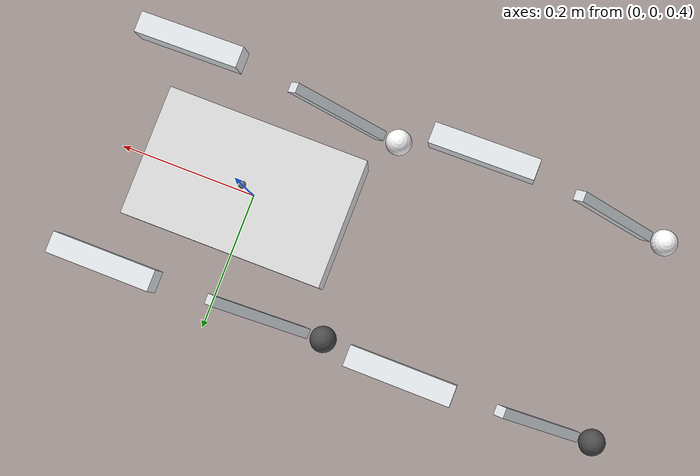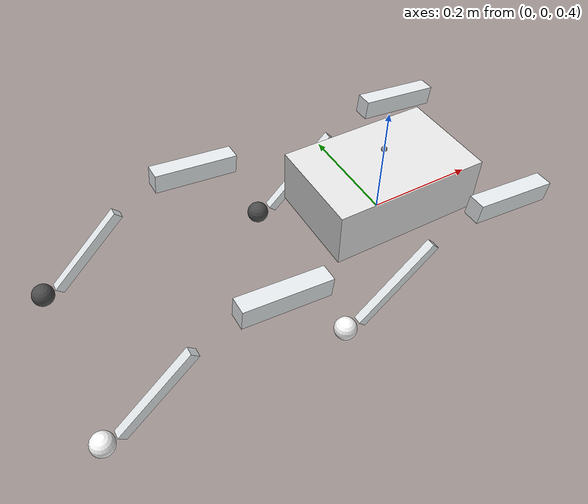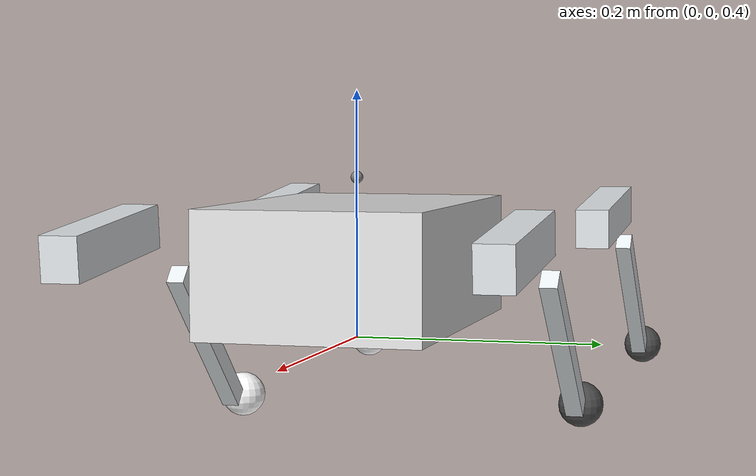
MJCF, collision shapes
<mujoco model="d1">
  <compiler angle="radian" meshdir="../meshes/"/>
  <option timestep="0.005" cone="elliptic" impratio="100" />
  <asset>
    <mesh name="base" file="base.STL"/>
    <mesh name="LF_hip" file="LF_hip.STL"/>
    <mesh name="FL_thigh" file="FL_thigh.STL"/>
    <mesh name="FL_calf" file="FL_calf.STL"/>
    <mesh name="FL_foot" file="FL_foot.STL"/>
    <mesh name="RF_hip" file="RF_hip.STL"/>
    <mesh name="FR_thigh" file="FR_thigh.STL"/>
    <mesh name="FR_calf" file="FR_calf.STL"/>
    <mesh name="FR_foot" file="FR_foot.STL"/>
    <mesh name="LH_hip" file="LH_hip.STL"/>
    <mesh name="RL_thigh" file="RL_thigh.STL"/>
    <mesh name="RL_calf" file="RL_calf.STL"/>
    <mesh name="RL_foot" file="RL_foot.STL"/>
    <mesh name="RH_hip" file="RH_hip.STL"/>
    <mesh name="RR_thigh" file="RR_thigh.STL"/>
    <mesh name="RR_calf" file="RR_calf.STL"/>
    <mesh name="RR_foot" file="RR_foot.STL"/>
  </asset>

  <worldbody>
    <body name="base" pos="0.0 0.0 0.53" quat="1.0 0.0 0.0 0.0">
      <inertial pos="-0.001955 0.002743 -0.068608" quat="0.00498611 0.706314 0.00376067 0.707871" mass="6.8891" diaginertia="0.10308 0.0811058 0.0359755"/>
      <joint name="floating_base" type="free" limited="false" actuatorfrclimited="false"/>
      <geom type="mesh" contype="0" conaffinity="0" group="1" density="0" rgba="0.882353 0.882353 0.882353 1" mesh="base"/>
      <geom size="0.14 0.09 0.05" pos="0 0 -0.069779" type="box" rgba="0.882353 0.882353 0.882353 1"/>
       <site name="imu" pos="0.0 0.0 0.0" />

      <body name="FL_hip" pos="0.16175 0.059997 -0.061498">
        <inertial pos="0.04756 -0.010434 -4.6e-05" quat="0.533889 0.530396 0.469192 0.462062" mass="0.706316" diaginertia="0.000537421 0.00044599 0.000400589"/>
        <joint name="FL_hip_joint" pos="0 0 0" axis="1 0 0" range="-1.57 1.57" actuatorfrcrange="-50 50" damping="0.01" armature="0.01" frictionloss="0.2"/>
        <geom type="mesh" contype="0" conaffinity="0" group="1" density="0" rgba="0.439216 0.439216 0.439216 1" mesh="LF_hip"/>
        <geom size="5e-05 5e-05 5e-05" type="box" rgba="0.439216 0.439216 0.439216 1"/>

        <body name="FL_thigh" pos="0.049998 0.019503 0">
          <inertial pos="-0.023554 0.050542 0.001956" quat="-0.0691461 0.692085 -0.223407 0.682881" mass="0.977146" diaginertia="0.00393691 0.00388566 0.000738421"/>
          <joint name="FL_thigh_joint" pos="0 0 0" axis="0 1 0" range="-1.57 2.4" actuatorfrcrange="-50 50" damping="0.01" armature="0.01" frictionloss="0.2"/>
          <geom type="mesh" contype="0" conaffinity="0" group="1" density="0" rgba="0.898039 0.917647 0.929412 1" mesh="FL_thigh"/>
          <geom size="0.075 0.015 0.0175" pos="-0.07 0.08 0.016" quat="0.99875 0 0.0499792 0" type="box" rgba="0.898039 0.917647 0.929412 1"/>

          <body name="FL_calf" pos="-0.2 0.07825 0">
            <inertial pos="-0.0285562 0.000197846 -0.0641588" quat="0.594858 0.384098 0.388599 0.589578" mass="0.270521" diaginertia="0.00625399 0.00602428 0.000252664"/>
            <joint name="FL_calf_joint" pos="0 0 0" axis="0 1 0" range="-2.25 0.5" actuatorfrcrange="-50 50" damping="0.01" armature="0.01" frictionloss="0.2"/>
            <geom type="mesh" contype="0" conaffinity="0" group="1" density="0" rgba="0.898039 0.917647 0.929412 1" mesh="FL_calf"/>
            <geom size="0.09 0.0075 0.009" pos="-0.08 0 -0.08" quat="0.928665 0 -0.37092 0" type="box" rgba="0.898039 0.917647 0.929412 1"/>
            <geom pos="-0.17362 0 -0.14312" type="mesh" contype="0" conaffinity="0" group="1" density="0" rgba="0.298039 0.298039 0.298039 1" mesh="FL_foot"/>
            <geom name="FL_foot_collision" size="0.02" pos="-0.17362 0 -0.14312" rgba="0.298039 0.298039 0.298039 1"/>
          </body>
        </body>
      </body>

      <body name="FR_hip" pos="0.16175 -0.059983 -0.061498">
        <inertial pos="0.047555 0.010661 -4.6e-05" quat="0.462045 0.469209 0.530352 0.533933" mass="0.706316" diaginertia="0.000537421 0.00044699 0.000400589"/>
        <joint name="FR_hip_joint" pos="0 0 0" axis="1 0 0" range="-1.57 1.57" actuatorfrcrange="-50 50" damping="0.01" armature="0.01" frictionloss="0.2"/>
        <geom type="mesh" contype="0" conaffinity="0" group="1" density="0" rgba="0.439216 0.439216 0.439216 1" mesh="RF_hip"/>
        <geom size="5e-05 5e-05 5e-05" type="box" rgba="0.439216 0.439216 0.439216 1"/>

        <body name="FR_thigh" pos="0.050002 -0.019247 0">
          <inertial pos="-0.023592 -0.050542 0.001598" quat="0.0702149 0.68698 0.222233 0.688288" mass="0.977146" diaginertia="0.00393714 0.00388579 0.000738077"/>
          <joint name="FR_thigh_joint" pos="0 0 0" axis="0 1 0" range="-1.57 2.4" actuatorfrcrange="-50 50" damping="0.01" armature="0.01" frictionloss="0.2"/>
          <geom type="mesh" contype="0" conaffinity="0" group="1" density="0" rgba="0.898039 0.917647 0.929412 1" mesh="FR_thigh"/>
          <geom size="0.075 0.015 0.0175" pos="-0.07 -0.08 0.016" quat="0.99875 0 0.0499792 0" type="box" rgba="0.898039 0.917647 0.929412 1"/>

          <body name="FR_calf" pos="-0.19998 -0.07825 -0.003052">
            <inertial pos="-0.0285651 -0.000197846 -0.0635362" quat="0.590656 0.386862 0.382293 0.596083" mass="0.270521" diaginertia="0.00627627 0.00605544 0.000243781"/>
            <joint name="FR_calf_joint" pos="0 0 0" axis="0 1 0" range="-2.25 0.5" actuatorfrcrange="-50 50" damping="0.01" armature="0.01" frictionloss="0.2"/>
            <geom type="mesh" contype="0" conaffinity="0" group="1" density="0" rgba="0.898039 0.917647 0.929412 1" mesh="FR_calf"/>
            <geom size="0.09 0.0075 0.009" pos="-0.08 0 -0.08" quat="0.928665 0 -0.37092 0" type="box" rgba="0.898039 0.917647 0.929412 1"/>
            <geom pos="-0.17362 0 -0.14312" type="mesh" contype="0" conaffinity="0" group="1" density="0" rgba="1 1 1 1" mesh="FR_foot"/>
            <geom name="FR_foot_collision" size="0.02" pos="-0.17362 0 -0.14312" rgba="1 1 1 1"/>
          </body>
        </body>
      </body>

      <body name="RL_hip" pos="-0.16175 0.059997 -0.061502">
        <inertial pos="-0.047555 -0.010434 -4.2e-05" quat="0.469192 0.462062 0.533889 0.530396" mass="0.706316" diaginertia="0.000537421 0.00044599 0.000400589"/>
        <joint name="RL_hip_joint" pos="0 0 0" axis="1 0 0" range="-1.57 1.57" actuatorfrcrange="-50 50" damping="0.01" armature="0.01" frictionloss="0.2"/>
        <geom type="mesh" contype="0" conaffinity="0" group="1" density="0" rgba="1 1 1 1" mesh="LH_hip"/>
        <geom size="5e-05 5e-05 5e-05" type="box" rgba="1 1 1 1"/>

        <body name="RL_thigh" pos="-0.050002 0.019503 0">
          <inertial pos="-0.023554 0.050542 0.001956" quat="-0.0691461 0.692085 -0.223407 0.682881" mass="0.977146" diaginertia="0.00393691 0.00388566 0.000738421"/>
          <joint name="RL_thigh_joint" pos="0 0 0" axis="0 1 0" range="-1.57 2.4" actuatorfrcrange="-50 50" damping="0.01" armature="0.01" frictionloss="0.2"/>
          <geom type="mesh" contype="0" conaffinity="0" group="1" density="0" rgba="0.898039 0.917647 0.929412 1" mesh="RL_thigh"/>
          <geom size="0.075 0.015 0.0175" pos="-0.07 0.08 0.016" quat="0.99875 0 0.0499792 0" type="box" rgba="0.898039 0.917647 0.929412 1"/>

         <body name="RL_calf" pos="-0.2 0.07825 0">
            <inertial pos="-0.0285562 0.000197846 -0.0641588" quat="0.594858 0.384098 0.388599 0.589578" mass="0.270521" diaginertia="0.00625399 0.00602428 0.000252664"/>
            <joint name="RL_calf_joint" pos="0 0 0" axis="0 1 0" range="-2.25 0.5" actuatorfrcrange="-50 50" damping="0.01" armature="0.01" frictionloss="0.2"/>
            <geom type="mesh" contype="0" conaffinity="0" group="1" density="0" rgba="0.898039 0.917647 0.929412 1" mesh="RL_calf"/>
            <geom size="0.09 0.0075 0.009" pos="-0.08 0 -0.08" quat="0.928665 0 -0.37092 0" type="box" rgba="0.898039 0.917647 0.929412 1"/>
            <geom pos="-0.17362 0 -0.14312" type="mesh" contype="0" conaffinity="0" group="1" density="0" rgba="0.298039 0.298039 0.298039 1" mesh="RL_foot"/>
            <geom name="RL_foot_collision" size="0.02" pos="-0.17362 0 -0.14312" rgba="0.298039 0.298039 0.298039 1"/>
          </body>
        </body>
      </body>

      <body name="RR_hip" pos="-0.16175 -0.060003 -0.061502">
        <inertial pos="-0.047555 0.010661 4.6e-05" quat="0.533933 0.530352 0.469209 0.462045" mass="0.706316" diaginertia="0.000537421 0.00044699 0.000400589"/>
        <joint name="RR_hip_joint" pos="0 0 0" axis="1 0 0" range="-1.57 1.57" actuatorfrcrange="-50 50" damping="0.01" armature="0.01" frictionloss="0.2"/>
        <geom type="mesh" contype="0" conaffinity="0" group="1" density="0" rgba="0.439216 0.439216 0.439216 1" mesh="RH_hip"/>
        <geom size="5e-05 5e-05 5e-05" type="box" rgba="0.439216 0.439216 0.439216 1"/>

        <body name="RR_thigh" pos="-0.050002 -0.019247 0">
          <inertial pos="-0.023592 -0.050542 0.001598" quat="0.0702149 0.68698 0.222233 0.688288" mass="0.977146" diaginertia="0.00393714 0.00388579 0.000738077"/>
          <joint name="RR_thigh_joint" pos="0 0 0" axis="0 1 0" range="-1.57 2.4" actuatorfrcrange="-50 50" damping="0.01" armature="0.01" frictionloss="0.2"/>
          <geom type="mesh" contype="0" conaffinity="0" group="1" density="0" rgba="0.898039 0.917647 0.929412 1" mesh="RR_thigh"/>
          <geom size="0.075 0.015 0.0175" pos="-0.07 -0.08 0.016" quat="0.99875 0 0.0499792 0" type="box" rgba="0.898039 0.917647 0.929412 1"/>

          <body name="RR_calf" pos="-0.19998 -0.07825 -0.003052">
            <inertial pos="-0.0285646 -0.000197846 -0.063536" quat="0.590656 0.386862 0.382294 0.596083" mass="0.270521" diaginertia="0.00627622 0.00605539 0.000243781"/>
            <joint name="RR_calf_joint" pos="0 0 0" axis="0 1 0" range="-2.25 0.5" actuatorfrcrange="-50 50" damping="0.01" armature="0.01" frictionloss="0.2"/>
            <geom type="mesh" contype="0" conaffinity="0" group="1" density="0" rgba="0.898039 0.917647 0.929412 1" mesh="RR_calf"/>
            <geom size="0.09 0.0075 0.009" pos="-0.08 0 -0.08" quat="0.928665 0 -0.37092 0" type="box" rgba="0.898039 0.917647 0.929412 1"/>
            <geom pos="-0.173616 0 -0.143118" type="mesh" contype="0" conaffinity="0" group="1" density="0" rgba="1 1 1 1" mesh="RR_foot"/>
            <geom name="RR_foot_collision" size="0.02" pos="-0.173616 0 -0.143118" rgba="1 1 1 1"/>
          </body>
        </body>
      </body>
    </body>
  </worldbody>

   <actuator>
    <motor name="FL_hip" joint="FL_hip_joint" ctrlrange="-50.0 50.0" />
    <motor name="FL_thigh" joint="FL_thigh_joint" ctrlrange="-50.0 50.0" />
    <motor name="FL_calf" joint="FL_calf_joint" ctrlrange="-50.0 50.0" />

    <motor name="FR_hip" joint="FR_hip_joint" ctrlrange="-50.0 50.0" />
    <motor name="FR_thigh" joint="FR_thigh_joint" ctrlrange="-50.0 50.0" />
    <motor name="FR_calf" joint="FR_calf_joint" ctrlrange="-50.0 50.0" />

    <motor name="RL_hip" joint="RL_hip_joint" ctrlrange="-50.0 50.0" />
    <motor name="RL_thigh" joint="RL_thigh_joint" ctrlrange="-50.0 50.0" />
    <motor name="RL_calf" joint="RL_calf_joint" ctrlrange="-50.0 50.0" />

    <motor name="RR_hip" joint="RR_hip_joint" ctrlrange="-50.0 50.0" />
    <motor name="RR_thigh" joint="RR_thigh_joint" ctrlrange="-50.0 50.0" />
    <motor name="RR_calf" joint="RR_calf_joint" ctrlrange="-50.0 50.0" />
  </actuator>

  <sensor>
    <jointpos name="FL_hip_pos" joint="FL_hip_joint" />
    <jointpos name="FL_thigh_pos" joint="FL_thigh_joint" />
    <jointpos name="FL_calf_pos" joint="FL_calf_joint" />

    <jointpos name="FR_hip_pos" joint="FR_hip_joint" />
    <jointpos name="FR_thigh_pos" joint="FR_thigh_joint" />
    <jointpos name="FR_calf_pos" joint="FR_calf_joint" />

    <jointpos name="RL_hip_pos" joint="RL_hip_joint" />
    <jointpos name="RL_thigh_pos" joint="RL_thigh_joint" />
    <jointpos name="RL_calf_pos" joint="RL_calf_joint" />

    <jointpos name="RR_hip_pos" joint="RR_hip_joint" />
    <jointpos name="RR_thigh_pos" joint="RR_thigh_joint" />
    <jointpos name="RR_calf_pos" joint="RR_calf_joint" />

    <jointvel name="FL_hip_vel" joint="FL_hip_joint" />
    <jointvel name="FL_thigh_vel" joint="FL_thigh_joint" />
    <jointvel name="FL_calf_vel" joint="FL_calf_joint" />

    <jointvel name="FR_hip_vel" joint="FR_hip_joint" />
    <jointvel name="FR_thigh_vel" joint="FR_thigh_joint" />
    <jointvel name="FR_calf_vel" joint="FR_calf_joint" />

    <jointvel name="RL_hip_vel" joint="RL_hip_joint" />
    <jointvel name="RL_thigh_vel" joint="RL_thigh_joint" />
    <jointvel name="RL_calf_vel" joint="RL_calf_joint" />

    <jointvel name="RR_hip_vel" joint="RR_hip_joint" />
    <jointvel name="RR_thigh_vel" joint="RR_thigh_joint" />
    <jointvel name="RR_calf_vel" joint="RR_calf_joint" />

    <jointactuatorfrc name="FL_hip_torque" joint="FL_hip_joint" noise="0.01" />
    <jointactuatorfrc name="FL_thigh_torque" joint="FL_thigh_joint" noise="0.01" />
    <jointactuatorfrc name="FL_calf_torque" joint="FL_calf_joint" noise="0.01" />

    <jointactuatorfrc name="FR_hip_torque" joint="FR_hip_joint" noise="0.01" />
    <jointactuatorfrc name="FR_thigh_torque" joint="FR_thigh_joint" noise="0.01" />
    <jointactuatorfrc name="FR_calf_torque" joint="FR_calf_joint" noise="0.01" />

    <jointactuatorfrc name="RL_hip_torque" joint="RL_hip_joint" noise="0.01" />
    <jointactuatorfrc name="RL_thigh_torque" joint="RL_thigh_joint" noise="0.01" />
    <jointactuatorfrc name="RL_calf_torque" joint="RL_calf_joint" noise="0.01" />

    <jointactuatorfrc name="RR_hip_torque" joint="RR_hip_joint" noise="0.01" />
    <jointactuatorfrc name="RR_thigh_torque" joint="RR_thigh_joint" noise="0.01" />
    <jointactuatorfrc name="RR_calf_torque" joint="RR_calf_joint" noise="0.01" />

    <framequat name="imu_quat" objtype="site" objname="imu" />
    <gyro name="imu_gyro" site="imu" />
    <accelerometer name="imu_acc" site="imu" />

    <framepos name="frame_pos" objtype="site" objname="imu" />
    <framelinvel name="frame_vel" objtype="site" objname="imu" />
  </sensor>

  <keyframe>
    <!-- "home" pose: folded/tucked position (pre_running_pos), base resting on belly -->
    <!-- qpos order: free_joint(x y z qw qx qy qz) + FL(hip thigh calf) FR(hip thigh calf) RL(hip thigh calf) RR(hip thigh calf) -->
    <key name="home" qpos="0 0 0.53 1 0 0 0
      0.0 0.0 -2.101
      0.0 0.0 -2.101
      0.0 0.0 -2.101
      0.0 0.0 -2.101"/>
  </keyframe>

</mujoco>
